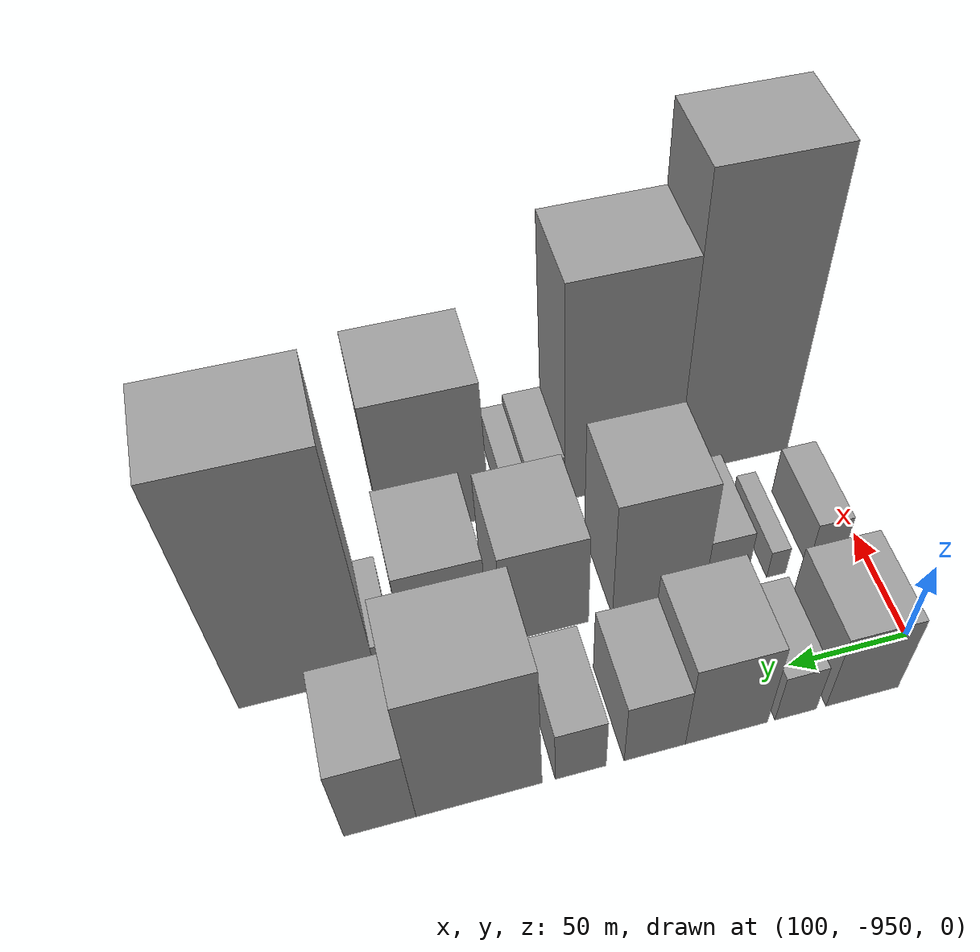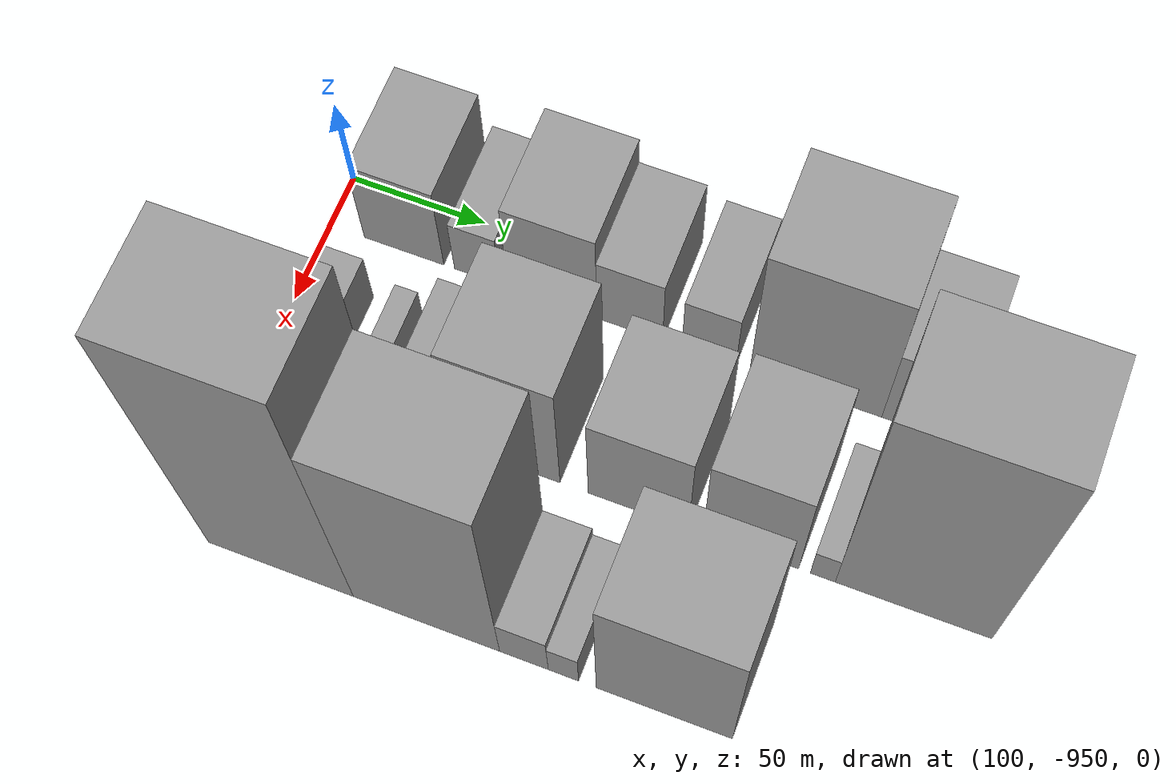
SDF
<sdf version="1.6">
 <world name="default">
  <model name="building_1">
   <static>1</static>
   <pose>100.0000 -922.0106 0 0.000000 0.000000 0.000000</pose>
   <link name="link">
    <pose>0 0 25.50 0 0 0</pose>
    <collision name="collision"><geometry><box><size>40.0000 29.9787 51.0000</size></box></geometry></collision>
    <visual name="visual">
     <cast_shadows>0</cast_shadows>
     <geometry><box><size>40.0000 29.9787 51.0000</size></box></geometry>
     <material>
      <script>
       <uri>model://grey_wall/materials/scripts</uri>
       <uri>model://grey_wall/materials/textures</uri>
       <name>vrc/grey_wall</name>
      </script>
     </material>
    </visual>
   </link>
  </model>
  <model name="building_2">
   <static>1</static>
   <pose>100.0000 -894.5773 0 0.000000 0.000000 0.000000</pose>
   <link name="link">
    <pose>0 0 16.50 0 0 0</pose>
    <collision name="collision"><geometry><box><size>40.0000 16.8880 33.0000</size></box></geometry></collision>
    <visual name="visual">
     <cast_shadows>0</cast_shadows>
     <geometry><box><size>40.0000 16.8880 33.0000</size></box></geometry>
     <material>
      <script>
       <uri>model://grey_wall/materials/scripts</uri>
       <uri>model://grey_wall/materials/textures</uri>
       <name>vrc/grey_wall</name>
      </script>
     </material>
    </visual>
   </link>
  </model>
  <model name="building_3">
   <static>1</static>
   <pose>100.0000 -866.7093 0 0.000000 0.000000 0.000000</pose>
   <link name="link">
    <pose>0 0 28.50 0 0 0</pose>
    <collision name="collision"><geometry><box><size>40.0000 32.8479 57.0000</size></box></geometry></collision>
    <visual name="visual">
     <cast_shadows>0</cast_shadows>
     <geometry><box><size>40.0000 32.8479 57.0000</size></box></geometry>
     <material>
      <script>
       <uri>model://grey_wall/materials/scripts</uri>
       <uri>model://grey_wall/materials/textures</uri>
       <name>vrc/grey_wall</name>
      </script>
     </material>
    </visual>
   </link>
  </model>
  <model name="building_4">
   <static>1</static>
   <pose>100.0000 -838.2878 0 0.000000 0.000000 0.000000</pose>
   <link name="link">
    <pose>0 0 21.00 0 0 0</pose>
    <collision name="collision"><geometry><box><size>40.0000 23.9951 42.0000</size></box></geometry></collision>
    <visual name="visual">
     <cast_shadows>0</cast_shadows>
     <geometry><box><size>40.0000 23.9951 42.0000</size></box></geometry>
     <material>
      <script>
       <uri>model://grey_wall/materials/scripts</uri>
       <uri>model://grey_wall/materials/textures</uri>
       <name>vrc/grey_wall</name>
      </script>
     </material>
    </visual>
   </link>
  </model>
  <model name="building_5">
   <static>1</static>
   <pose>100.0000 -809.5649 0 0.000000 0.000000 0.000000</pose>
   <link name="link">
    <pose>0 0 18.00 0 0 0</pose>
    <collision name="collision"><geometry><box><size>40.0000 19.4507 36.0000</size></box></geometry></collision>
    <visual name="visual">
     <cast_shadows>0</cast_shadows>
     <geometry><box><size>40.0000 19.4507 36.0000</size></box></geometry>
     <material>
      <script>
       <uri>model://grey_wall/materials/scripts</uri>
       <uri>model://grey_wall/materials/textures</uri>
       <name>vrc/grey_wall</name>
      </script>
     </material>
    </visual>
   </link>
  </model>
  <model name="building_6">
   <static>1</static>
   <pose>100.0000 -771.3795 0 0.000000 0.000000 0.000000</pose>
   <link name="link">
    <pose>0 0 43.50 0 0 0</pose>
    <collision name="collision"><geometry><box><size>40.0000 46.9200 87.0000</size></box></geometry></collision>
    <visual name="visual">
     <cast_shadows>0</cast_shadows>
     <geometry><box><size>40.0000 46.9200 87.0000</size></box></geometry>
     <material>
      <script>
       <uri>model://grey_wall/materials/scripts</uri>
       <uri>model://grey_wall/materials/textures</uri>
       <name>vrc/grey_wall</name>
      </script>
     </material>
    </visual>
   </link>
  </model>
  <model name="building_7">
   <static>1</static>
   <pose>100.0000 -734.8246 0 0.000000 0.000000 0.000000</pose>
   <link name="link">
    <pose>0 0 25.50 0 0 0</pose>
    <collision name="collision"><geometry><box><size>40.0000 26.1900 51.0000</size></box></geometry></collision>
    <visual name="visual">
     <cast_shadows>0</cast_shadows>
     <geometry><box><size>40.0000 26.1900 51.0000</size></box></geometry>
     <material>
      <script>
       <uri>model://grey_wall/materials/scripts</uri>
       <uri>model://grey_wall/materials/textures</uri>
       <name>vrc/grey_wall</name>
      </script>
     </material>
    </visual>
   </link>
  </model>
  <model name="building_59">
   <static>1</static>
   <pose>160.0000 -932.4052 0 0.000000 0.000000 0.000000</pose>
   <link name="link">
    <pose>0 0 15.00 0 0 0</pose>
    <collision name="collision"><geometry><box><size>40.0000 15.1895 30.0000</size></box></geometry></collision>
    <visual name="visual">
     <cast_shadows>0</cast_shadows>
     <geometry><box><size>40.0000 15.1895 30.0000</size></box></geometry>
     <material>
      <script>
       <uri>model://grey_wall/materials/scripts</uri>
       <uri>model://grey_wall/materials/textures</uri>
       <name>vrc/grey_wall</name>
      </script>
     </material>
    </visual>
   </link>
  </model>
  <model name="building_60">
   <static>1</static>
   <pose>160.0000 -910.6646 0 0.000000 0.000000 0.000000</pose>
   <link name="link">
    <pose>0 0 9.00 0 0 0</pose>
    <collision name="collision"><geometry><box><size>40.0000 8.2917 18.0000</size></box></geometry></collision>
    <visual name="visual">
     <cast_shadows>0</cast_shadows>
     <geometry><box><size>40.0000 8.2917 18.0000</size></box></geometry>
     <material>
      <script>
       <uri>model://grey_wall/materials/scripts</uri>
       <uri>model://grey_wall/materials/textures</uri>
       <name>vrc/grey_wall</name>
      </script>
     </material>
    </visual>
   </link>
  </model>
  <model name="building_61">
   <static>1</static>
   <pose>160.0000 -888.4596 0 0.000000 0.000000 0.000000</pose>
   <link name="link">
    <pose>0 0 18.00 0 0 0</pose>
    <collision name="collision"><geometry><box><size>40.0000 18.1182 36.0000</size></box></geometry></collision>
    <visual name="visual">
     <cast_shadows>0</cast_shadows>
     <geometry><box><size>40.0000 18.1182 36.0000</size></box></geometry>
     <material>
      <script>
       <uri>model://grey_wall/materials/scripts</uri>
       <uri>model://grey_wall/materials/textures</uri>
       <name>vrc/grey_wall</name>
      </script>
     </material>
    </visual>
   </link>
  </model>
  <model name="building_62">
   <static>1</static>
   <pose>160.0000 -859.8028 0 0.000000 0.000000 0.000000</pose>
   <link name="link">
    <pose>0 0 37.50 0 0 0</pose>
    <collision name="collision"><geometry><box><size>40.0000 39.1955 75.0000</size></box></geometry></collision>
    <visual name="visual">
     <cast_shadows>0</cast_shadows>
     <geometry><box><size>40.0000 39.1955 75.0000</size></box></geometry>
     <material>
      <script>
       <uri>model://grey_wall/materials/scripts</uri>
       <uri>model://grey_wall/materials/textures</uri>
       <name>vrc/grey_wall</name>
      </script>
     </material>
    </visual>
   </link>
  </model>
  <model name="building_63">
   <static>1</static>
   <pose>160.0000 -812.5876 0 0.000000 0.000000 0.000000</pose>
   <link name="link">
    <pose>0 0 30.00 0 0 0</pose>
    <collision name="collision"><geometry><box><size>40.0000 35.2349 60.0000</size></box></geometry></collision>
    <visual name="visual">
     <cast_shadows>0</cast_shadows>
     <geometry><box><size>40.0000 35.2349 60.0000</size></box></geometry>
     <material>
      <script>
       <uri>model://grey_wall/materials/scripts</uri>
       <uri>model://grey_wall/materials/textures</uri>
       <name>vrc/grey_wall</name>
      </script>
     </material>
    </visual>
   </link>
  </model>
  <model name="building_64">
   <static>1</static>
   <pose>160.0000 -773.4200 0 0.000000 0.000000 0.000000</pose>
   <link name="link">
    <pose>0 0 31.50 0 0 0</pose>
    <collision name="collision"><geometry><box><size>40.0000 33.1002 63.0000</size></box></geometry></collision>
    <visual name="visual">
     <cast_shadows>0</cast_shadows>
     <geometry><box><size>40.0000 33.1002 63.0000</size></box></geometry>
     <material>
      <script>
       <uri>model://grey_wall/materials/scripts</uri>
       <uri>model://grey_wall/materials/textures</uri>
       <name>vrc/grey_wall</name>
      </script>
     </material>
    </visual>
   </link>
  </model>
  <model name="building_65">
   <static>1</static>
   <pose>160.0000 -748.5970 0 0.000000 0.000000 0.000000</pose>
   <link name="link">
    <pose>0 0 10.50 0 0 0</pose>
    <collision name="collision"><geometry><box><size>40.0000 8.5458 21.0000</size></box></geometry></collision>
    <visual name="visual">
     <cast_shadows>0</cast_shadows>
     <geometry><box><size>40.0000 8.5458 21.0000</size></box></geometry>
     <material>
      <script>
       <uri>model://grey_wall/materials/scripts</uri>
       <uri>model://grey_wall/materials/textures</uri>
       <name>vrc/grey_wall</name>
      </script>
     </material>
    </visual>
   </link>
  </model>
  <model name="building_66">
   <static>1</static>
   <pose>160.0000 -717.8331 0 0.000000 0.000000 0.000000</pose>
   <link name="link">
    <pose>0 0 72.00 0 0 0</pose>
    <collision name="collision"><geometry><box><size>40.0000 52.9821 144.0000</size></box></geometry></collision>
    <visual name="visual">
     <cast_shadows>0</cast_shadows>
     <geometry><box><size>40.0000 52.9821 144.0000</size></box></geometry>
     <material>
      <script>
       <uri>model://grey_wall/materials/scripts</uri>
       <uri>model://grey_wall/materials/textures</uri>
       <name>vrc/grey_wall</name>
      </script>
     </material>
    </visual>
   </link>
  </model>
  <model name="building_117">
   <static>1</static>
   <pose>220.0000 -914.1873 0 0.000000 0.000000 0.000000</pose>
   <link name="link">
    <pose>0 0 84.00 0 0 0</pose>
    <collision name="collision"><geometry><box><size>40.0000 51.6253 168.0000</size></box></geometry></collision>
    <visual name="visual">
     <cast_shadows>0</cast_shadows>
     <geometry><box><size>40.0000 51.6253 168.0000</size></box></geometry>
     <material>
      <script>
       <uri>model://grey_wall/materials/scripts</uri>
       <uri>model://grey_wall/materials/textures</uri>
       <name>vrc/grey_wall</name>
      </script>
     </material>
    </visual>
   </link>
  </model>
  <model name="building_118">
   <static>1</static>
   <pose>220.0000 -862.8653 0 0.000000 0.000000 0.000000</pose>
   <link name="link">
    <pose>0 0 64.50 0 0 0</pose>
    <collision name="collision"><geometry><box><size>40.0000 51.0187 129.0000</size></box></geometry></collision>
    <visual name="visual">
     <cast_shadows>0</cast_shadows>
     <geometry><box><size>40.0000 51.0187 129.0000</size></box></geometry>
     <material>
      <script>
       <uri>model://grey_wall/materials/scripts</uri>
       <uri>model://grey_wall/materials/textures</uri>
       <name>vrc/grey_wall</name>
      </script>
     </material>
    </visual>
   </link>
  </model>
  <model name="building_119">
   <static>1</static>
   <pose>220.0000 -828.9897 0 0.000000 0.000000 0.000000</pose>
   <link name="link">
    <pose>0 0 15.00 0 0 0</pose>
    <collision name="collision"><geometry><box><size>40.0000 16.7325 30.0000</size></box></geometry></collision>
    <visual name="visual">
     <cast_shadows>0</cast_shadows>
     <geometry><box><size>40.0000 16.7325 30.0000</size></box></geometry>
     <material>
      <script>
       <uri>model://grey_wall/materials/scripts</uri>
       <uri>model://grey_wall/materials/textures</uri>
       <name>vrc/grey_wall</name>
      </script>
     </material>
    </visual>
   </link>
  </model>
  <model name="building_120">
   <static>1</static>
   <pose>220.0000 -815.4425 0 0.000000 0.000000 0.000000</pose>
   <link name="link">
    <pose>0 0 12.00 0 0 0</pose>
    <collision name="collision"><geometry><box><size>40.0000 10.3620 24.0000</size></box></geometry></collision>
    <visual name="visual">
     <cast_shadows>0</cast_shadows>
     <geometry><box><size>40.0000 10.3620 24.0000</size></box></geometry>
     <material>
      <script>
       <uri>model://grey_wall/materials/scripts</uri>
       <uri>model://grey_wall/materials/textures</uri>
       <name>vrc/grey_wall</name>
      </script>
     </material>
    </visual>
   </link>
  </model>
  <model name="building_121">
   <static>1</static>
   <pose>220.0000 -781.3089 0 0.000000 0.000000 0.000000</pose>
   <link name="link">
    <pose>0 0 43.50 0 0 0</pose>
    <collision name="collision"><geometry><box><size>40.0000 45.9051 87.0000</size></box></geometry></collision>
    <visual name="visual">
     <cast_shadows>0</cast_shadows>
     <geometry><box><size>40.0000 45.9051 87.0000</size></box></geometry>
     <material>
      <script>
       <uri>model://grey_wall/materials/scripts</uri>
       <uri>model://grey_wall/materials/textures</uri>
       <name>vrc/grey_wall</name>
      </script>
     </material>
    </visual>
   </link>
  </model>
 </world>
</sdf>
